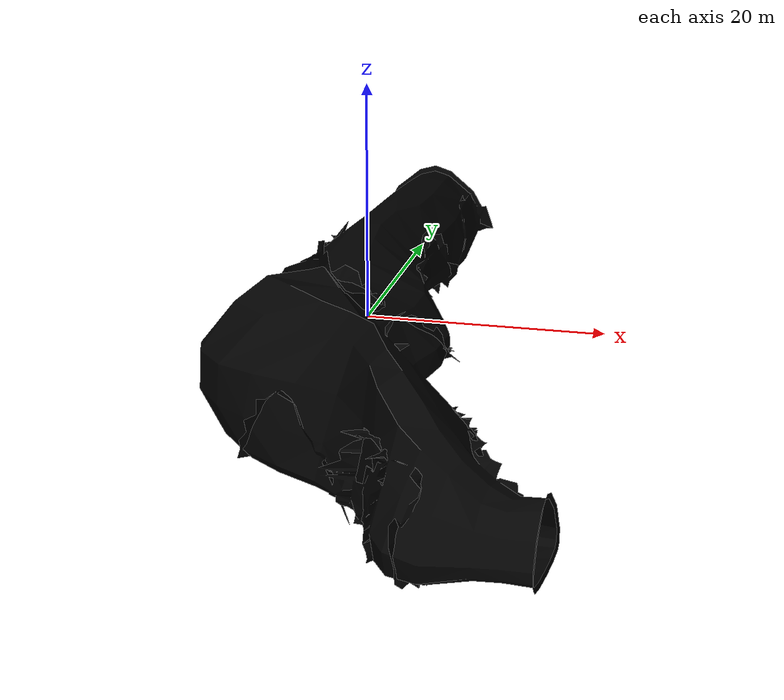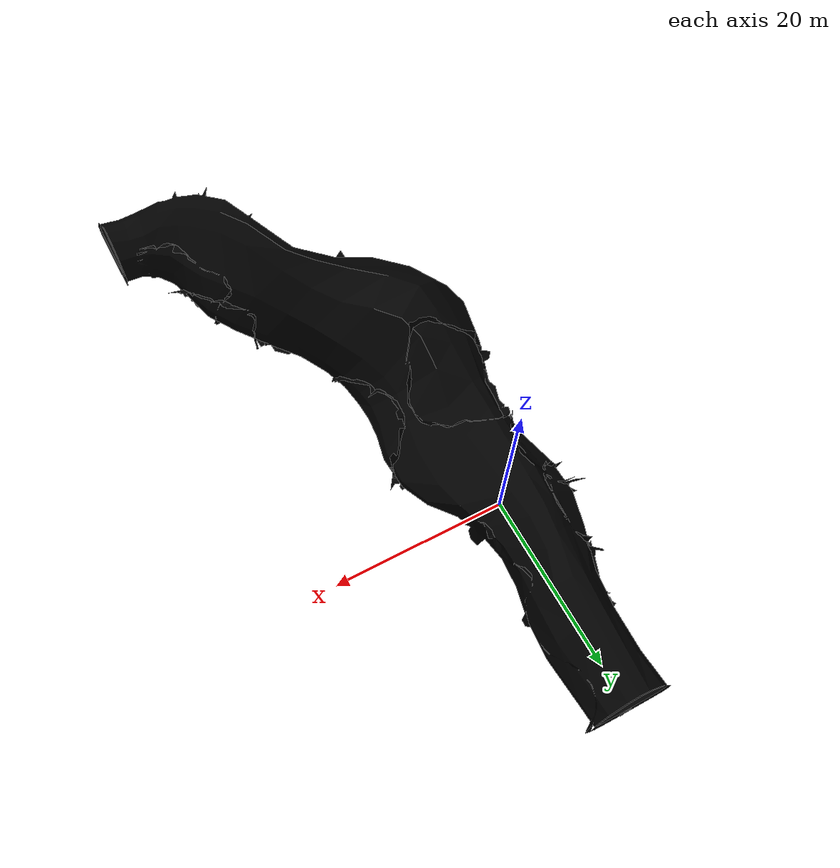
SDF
<sdf version="1.6">
  <model name="Cave Corner 02 Lights Type A">
    <include>
      <name>cave_corner_02_type_a</name>
      <uri>model://Cave Corner 02 Type A</uri>
    </include>
    <static>true</static>
    <link name="lights">
      <light name="Omni009" type="spot">
        <pose>5.8147 -29.1165 5.08124 0 0 0</pose>
        <diffuse>0 0 0 1</diffuse>
        <specular>0 0 0 1</specular>
        <attenuation>
          <range>20</range>
          <linear>0.2</linear>
          <constant>1.0</constant>
          <quadratic>0.01</quadratic>
        </attenuation>
        <spot>
          <inner_angle>2.0</inner_angle>
          <outer_angle>3.1</outer_angle>
          <falloff>1.2</falloff>
        </spot>
        <cast_shadows>false</cast_shadows>
      </light>
      <light name="Omni010" type="spot">
        <pose>-1.05491 3.24461 2.89552 0 0 0</pose>
        <diffuse>0 0 0 1</diffuse>
        <specular>0 0 0 1</specular>
        <attenuation>
          <range>20</range>
          <linear>0.2</linear>
          <constant>1.0</constant>
          <quadratic>0.01</quadratic>
        </attenuation>
        <spot>
          <inner_angle>2.0</inner_angle>
          <outer_angle>3.1</outer_angle>
          <falloff>1.2</falloff>
        </spot>
        <cast_shadows>false</cast_shadows>
      </light>
    </link>
  </model>
</sdf>

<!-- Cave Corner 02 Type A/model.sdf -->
<sdf version="1.6">
  <model name="Cave Corner 02 Type A">
    <static>true</static>
    <link name="base_link">
      <collision name="collision">
        <pose>0 0 0 0 0 0</pose>
        <geometry>
          <mesh>
            <uri>model://Cave Corner 02 Type A/meshes/corner02.dae</uri>
            <scale>1.0 1.0 1.0</scale>
          </mesh>
        </geometry>
      </collision>
      <visual name="Gravel_visual">
        <geometry>
          <mesh>
            <uri>model://Cave Corner 02 Type A/meshes/corner02.dae</uri>
            <submesh>
              <name>Gravel</name>
              <center>false</center>
            </submesh>
          </mesh>
        </geometry>
        <material>
          <diffuse>0 0 0 1</diffuse>
          <specular>0 0 0 1</specular>
          <pbr>
            <metal>
              <albedo_map>model://Cave Corner 02 Type A/materials/textures/Gravel_Albedo.png</albedo_map>
              <normal_map>model://Cave Corner 02 Type A/materials/textures/Gravel_Normal.png</normal_map>
              <roughness_map>model://Cave Corner 02 Type A/materials/textures/Gravel_Roughness.png</roughness_map>
            </metal>
          </pbr>

          <script>
            <uri>model://Cave Corner 02 Type A/materials/scripts/</uri>
            <uri>model://Cave Corner 02 Type A/materials/textures/</uri>
            <name>CaveTile/Gravel_Diffuse</name>
          </script>
        </material>
      </visual>
      <visual name="RockPile_visual">
        <geometry>
          <mesh>
            <uri>model://Cave Corner 02 Type A/meshes/corner02.dae</uri>
            <submesh>
              <name>RockPile</name>
              <center>false</center>
            </submesh>
          </mesh>
        </geometry>
        <material>
          <diffuse>0 0 0 1</diffuse>
          <specular>0 0 0 1</specular>
          <pbr>
            <metal>
              <albedo_map>model://Cave Corner 02 Type A/materials/textures/RockPile_Albedo.png</albedo_map>
              <normal_map>model://Cave Corner 02 Type A/materials/textures/RockPile_Normal.png</normal_map>
              <roughness_map>model://Cave Corner 02 Type A/materials/textures/RockPile_Roughness.png</roughness_map>
            </metal>
          </pbr>

          <script>
            <uri>model://Cave Corner 02 Type A/materials/scripts/</uri>
            <uri>model://Cave Corner 02 Type A/materials/textures/</uri>
            <name>CaveTile/RockPile_Diffuse</name>
          </script>
        </material>
      </visual>
      <visual name="StriatedRock_visual">
        <geometry>
          <mesh>
            <uri>model://Cave Corner 02 Type A/meshes/corner02.dae</uri>
            <submesh>
              <name>StriatedRock</name>
              <center>false</center>
            </submesh>
          </mesh>
        </geometry>
        <material>
          <diffuse>0 0 0 1</diffuse>
          <specular>0 0 0 1</specular>
          <pbr>
            <metal>
              <albedo_map>model://Cave Corner 02 Type A/materials/textures/StriatedRock_Albedo.png</albedo_map>
              <normal_map>model://Cave Corner 02 Type A/materials/textures/StriatedRock_Normal.png</normal_map>
              <roughness_map>model://Cave Corner 02 Type A/materials/textures/StriatedRock_Roughness.png</roughness_map>
            </metal>
          </pbr>

          <script>
            <uri>model://Cave Corner 02 Type A/materials/scripts/</uri>
            <uri>model://Cave Corner 02 Type A/materials/textures/</uri>
            <name>CaveTile/StriatedRock_Diffuse</name>
          </script>
        </material>
      </visual>
      <visual name="CaveWall_visual">
        <geometry>
          <mesh>
            <uri>model://Cave Corner 02 Type A/meshes/corner02.dae</uri>
            <submesh>
              <name>CaveWall</name>
              <center>false</center>
            </submesh>
          </mesh>
        </geometry>
        <material>
          <diffuse>0 0 0 1</diffuse>
          <specular>0 0 0 1</specular>
          <pbr>
            <metal>
              <albedo_map>model://Cave Corner 02 Type A/materials/textures/CaveWall_Albedo.png</albedo_map>
              <normal_map>model://Cave Corner 02 Type A/materials/textures/CaveWall_Normal.png</normal_map>
              <roughness_map>model://Cave Corner 02 Type A/materials/textures/CaveWall_Roughness.png</roughness_map>
            </metal>
          </pbr>

          <script>
            <uri>model://Cave Corner 02 Type A/materials/scripts/</uri>
            <uri>model://Cave Corner 02 Type A/materials/textures/</uri>
            <name>CaveTile/CaveWall_Diffuse</name>
          </script>
        </material>
      </visual>
    </link>
  </model>
</sdf>
